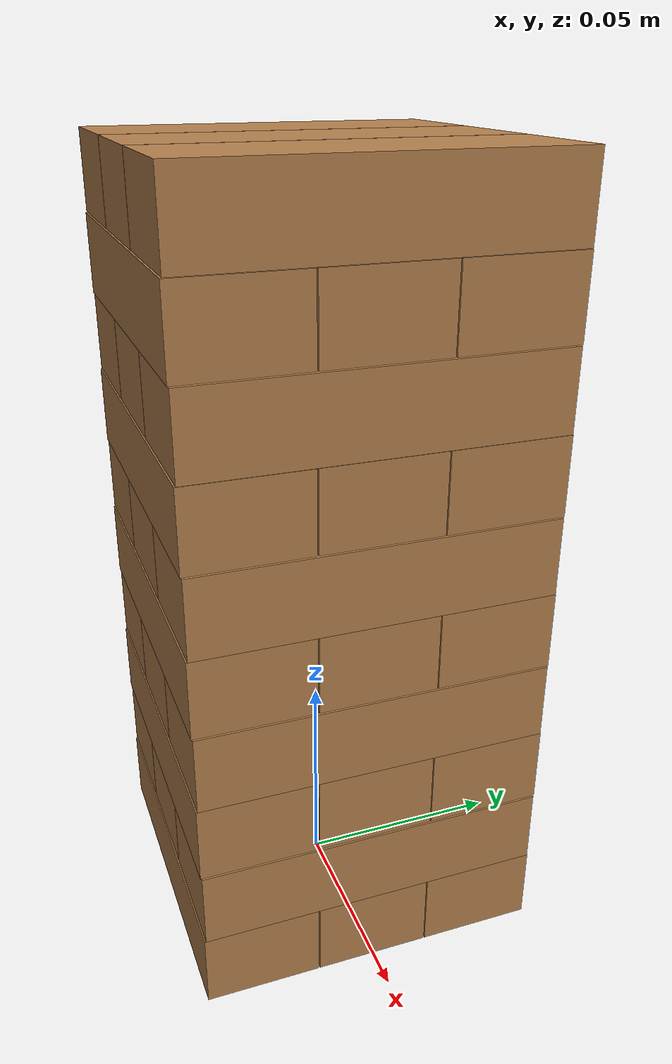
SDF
<?xml version="1.0" ?>
<sdf version="1.5">
  <model name="wood_block_stack">
    <link name= "block_1">
      <pose>0 -0.02727 0.009  0 0 0</pose>
      <self_collide>1</self_collide>
      <inertial>
        <mass>0.019682999999999996</mass>
        <inertia>
          <ixx>1.7271832499999993e-06</ixx>
          <iyy>1.1293121249999997e-05</iyy>
          <izz>1.1957422499999997e-05</izz>
          <ixy>0</ixy>
          <ixz>0</ixz>
          <iyz>0</iyz>
        </inertia>
      </inertial>
      <collision name="collision">
        <max_contacts>3</max_contacts>
        <geometry>
          <box>
            <size>0.081 0.027 0.018</size>
          </box>
        </geometry>
        <surface>
          <contact>
            <ode>
              <max_vel>1.0</max_vel>
              <min_depth>0.001</min_depth>
            </ode>
          </contact>
          <friction>
            <ode>
              <mu>0.4</mu>
              <mu2>0.4</mu2>
            </ode>
          </friction>
        </surface>
      </collision>
      <visual name="visual">
        <geometry>
          <box>
            <size>0.081 0.027 0.018</size>
          </box>
        </geometry>
        <material>
          <script>
            <uri>file://media/materials/scripts/gazebo.material</uri>
            <name>Gazebo/Wood</name>
          </script>
        </material>
      </visual>
    </link>

    <link name= "block_2">
      <pose>0 0.0 0.009  0 0 0</pose>
      <self_collide>1</self_collide>
      <inertial>
        <mass>0.019682999999999996</mass>
        <inertia>
          <ixx>1.7271832499999993e-06</ixx>
          <iyy>1.1293121249999997e-05</iyy>
          <izz>1.1957422499999997e-05</izz>
          <ixy>0</ixy>
          <ixz>0</ixz>
          <iyz>0</iyz>
        </inertia>
      </inertial>
      <collision name="collision">
        <max_contacts>3</max_contacts>
        <geometry>
          <box>
            <size>0.081 0.027 0.018</size>
          </box>
        </geometry>
        <surface>
          <contact>
            <ode>
              <max_vel>1.0</max_vel>
              <min_depth>0.001</min_depth>
            </ode>
          </contact>
          <friction>
            <ode>
              <mu>0.4</mu>
              <mu2>0.4</mu2>
            </ode>
          </friction>
        </surface>
      </collision>
      <visual name="visual">
        <geometry>
          <box>
            <size>0.081 0.027 0.018</size>
          </box>
        </geometry>
        <material>
          <script>
            <uri>file://media/materials/scripts/gazebo.material</uri>
            <name>Gazebo/Wood</name>
          </script>
        </material>
      </visual>
    </link>

    <link name= "block_3">
      <pose>0 0.02727 0.009  0 0 0</pose>
      <self_collide>1</self_collide>
      <inertial>
        <mass>0.019682999999999996</mass>
        <inertia>
          <ixx>1.7271832499999993e-06</ixx>
          <iyy>1.1293121249999997e-05</iyy>
          <izz>1.1957422499999997e-05</izz>
          <ixy>0</ixy>
          <ixz>0</ixz>
          <iyz>0</iyz>
        </inertia>
      </inertial>
      <collision name="collision">
        <max_contacts>3</max_contacts>
        <geometry>
          <box>
            <size>0.081 0.027 0.018</size>
          </box>
        </geometry>
        <surface>
          <contact>
            <ode>
              <max_vel>1.0</max_vel>
              <min_depth>0.001</min_depth>
            </ode>
          </contact>
          <friction>
            <ode>
              <mu>0.4</mu>
              <mu2>0.4</mu2>
            </ode>
          </friction>
        </surface>
      </collision>
      <visual name="visual">
        <geometry>
          <box>
            <size>0.081 0.027 0.018</size>
          </box>
        </geometry>
        <material>
          <script>
            <uri>file://media/materials/scripts/gazebo.material</uri>
            <name>Gazebo/Wood</name>
          </script>
        </material>
      </visual>
    </link>

    <link name= "block_4">
      <pose>-0.02727 0 0.027179999999999996  0 0 1.5707963267948966</pose>
      <self_collide>1</self_collide>
      <inertial>
        <mass>0.019682999999999996</mass>
        <inertia>
          <ixx>1.7271832499999993e-06</ixx>
          <iyy>1.1293121249999997e-05</iyy>
          <izz>1.1957422499999997e-05</izz>
          <ixy>0</ixy>
          <ixz>0</ixz>
          <iyz>0</iyz>
        </inertia>
      </inertial>
      <collision name="collision">
        <max_contacts>3</max_contacts>
        <geometry>
          <box>
            <size>0.081 0.027 0.018</size>
          </box>
        </geometry>
        <surface>
          <contact>
            <ode>
              <max_vel>1.0</max_vel>
              <min_depth>0.001</min_depth>
            </ode>
          </contact>
          <friction>
            <ode>
              <mu>0.4</mu>
              <mu2>0.4</mu2>
            </ode>
          </friction>
        </surface>
      </collision>
      <visual name="visual">
        <geometry>
          <box>
            <size>0.081 0.027 0.018</size>
          </box>
        </geometry>
        <material>
          <script>
            <uri>file://media/materials/scripts/gazebo.material</uri>
            <name>Gazebo/Wood</name>
          </script>
        </material>
      </visual>
    </link>

    <link name= "block_5">
      <pose>0.0 0 0.027179999999999996  0 0 1.5707963267948966</pose>
      <self_collide>1</self_collide>
      <inertial>
        <mass>0.019682999999999996</mass>
        <inertia>
          <ixx>1.7271832499999993e-06</ixx>
          <iyy>1.1293121249999997e-05</iyy>
          <izz>1.1957422499999997e-05</izz>
          <ixy>0</ixy>
          <ixz>0</ixz>
          <iyz>0</iyz>
        </inertia>
      </inertial>
      <collision name="collision">
        <max_contacts>3</max_contacts>
        <geometry>
          <box>
            <size>0.081 0.027 0.018</size>
          </box>
        </geometry>
        <surface>
          <contact>
            <ode>
              <max_vel>1.0</max_vel>
              <min_depth>0.001</min_depth>
            </ode>
          </contact>
          <friction>
            <ode>
              <mu>0.4</mu>
              <mu2>0.4</mu2>
            </ode>
          </friction>
        </surface>
      </collision>
      <visual name="visual">
        <geometry>
          <box>
            <size>0.081 0.027 0.018</size>
          </box>
        </geometry>
        <material>
          <script>
            <uri>file://media/materials/scripts/gazebo.material</uri>
            <name>Gazebo/Wood</name>
          </script>
        </material>
      </visual>
    </link>

    <link name= "block_6">
      <pose>0.02727 0 0.027179999999999996  0 0 1.5707963267948966</pose>
      <self_collide>1</self_collide>
      <inertial>
        <mass>0.019682999999999996</mass>
        <inertia>
          <ixx>1.7271832499999993e-06</ixx>
          <iyy>1.1293121249999997e-05</iyy>
          <izz>1.1957422499999997e-05</izz>
          <ixy>0</ixy>
          <ixz>0</ixz>
          <iyz>0</iyz>
        </inertia>
      </inertial>
      <collision name="collision">
        <max_contacts>3</max_contacts>
        <geometry>
          <box>
            <size>0.081 0.027 0.018</size>
          </box>
        </geometry>
        <surface>
          <contact>
            <ode>
              <max_vel>1.0</max_vel>
              <min_depth>0.001</min_depth>
            </ode>
          </contact>
          <friction>
            <ode>
              <mu>0.4</mu>
              <mu2>0.4</mu2>
            </ode>
          </friction>
        </surface>
      </collision>
      <visual name="visual">
        <geometry>
          <box>
            <size>0.081 0.027 0.018</size>
          </box>
        </geometry>
        <material>
          <script>
            <uri>file://media/materials/scripts/gazebo.material</uri>
            <name>Gazebo/Wood</name>
          </script>
        </material>
      </visual>
    </link>

    <link name= "block_7">
      <pose>0 -0.02727 0.04536  0 0 0</pose>
      <self_collide>1</self_collide>
      <inertial>
        <mass>0.019682999999999996</mass>
        <inertia>
          <ixx>1.7271832499999993e-06</ixx>
          <iyy>1.1293121249999997e-05</iyy>
          <izz>1.1957422499999997e-05</izz>
          <ixy>0</ixy>
          <ixz>0</ixz>
          <iyz>0</iyz>
        </inertia>
      </inertial>
      <collision name="collision">
        <max_contacts>3</max_contacts>
        <geometry>
          <box>
            <size>0.081 0.027 0.018</size>
          </box>
        </geometry>
        <surface>
          <contact>
            <ode>
              <max_vel>1.0</max_vel>
              <min_depth>0.001</min_depth>
            </ode>
          </contact>
          <friction>
            <ode>
              <mu>0.4</mu>
              <mu2>0.4</mu2>
            </ode>
          </friction>
        </surface>
      </collision>
      <visual name="visual">
        <geometry>
          <box>
            <size>0.081 0.027 0.018</size>
          </box>
        </geometry>
        <material>
          <script>
            <uri>file://media/materials/scripts/gazebo.material</uri>
            <name>Gazebo/Wood</name>
          </script>
        </material>
      </visual>
    </link>

    <link name= "block_8">
      <pose>0 0.0 0.04536  0 0 0</pose>
      <self_collide>1</self_collide>
      <inertial>
        <mass>0.019682999999999996</mass>
        <inertia>
          <ixx>1.7271832499999993e-06</ixx>
          <iyy>1.1293121249999997e-05</iyy>
          <izz>1.1957422499999997e-05</izz>
          <ixy>0</ixy>
          <ixz>0</ixz>
          <iyz>0</iyz>
        </inertia>
      </inertial>
      <collision name="collision">
        <max_contacts>3</max_contacts>
        <geometry>
          <box>
            <size>0.081 0.027 0.018</size>
          </box>
        </geometry>
        <surface>
          <contact>
            <ode>
              <max_vel>1.0</max_vel>
              <min_depth>0.001</min_depth>
            </ode>
          </contact>
          <friction>
            <ode>
              <mu>0.4</mu>
              <mu2>0.4</mu2>
            </ode>
          </friction>
        </surface>
      </collision>
      <visual name="visual">
        <geometry>
          <box>
            <size>0.081 0.027 0.018</size>
          </box>
        </geometry>
        <material>
          <script>
            <uri>file://media/materials/scripts/gazebo.material</uri>
            <name>Gazebo/Wood</name>
          </script>
        </material>
      </visual>
    </link>

    <link name= "block_9">
      <pose>0 0.02727 0.04536  0 0 0</pose>
      <self_collide>1</self_collide>
      <inertial>
        <mass>0.019682999999999996</mass>
        <inertia>
          <ixx>1.7271832499999993e-06</ixx>
          <iyy>1.1293121249999997e-05</iyy>
          <izz>1.1957422499999997e-05</izz>
          <ixy>0</ixy>
          <ixz>0</ixz>
          <iyz>0</iyz>
        </inertia>
      </inertial>
      <collision name="collision">
        <max_contacts>3</max_contacts>
        <geometry>
          <box>
            <size>0.081 0.027 0.018</size>
          </box>
        </geometry>
        <surface>
          <contact>
            <ode>
              <max_vel>1.0</max_vel>
              <min_depth>0.001</min_depth>
            </ode>
          </contact>
          <friction>
            <ode>
              <mu>0.4</mu>
              <mu2>0.4</mu2>
            </ode>
          </friction>
        </surface>
      </collision>
      <visual name="visual">
        <geometry>
          <box>
            <size>0.081 0.027 0.018</size>
          </box>
        </geometry>
        <material>
          <script>
            <uri>file://media/materials/scripts/gazebo.material</uri>
            <name>Gazebo/Wood</name>
          </script>
        </material>
      </visual>
    </link>

    <link name= "block_10">
      <pose>-0.02727 0 0.06354  0 0 1.5707963267948966</pose>
      <self_collide>1</self_collide>
      <inertial>
        <mass>0.019682999999999996</mass>
        <inertia>
          <ixx>1.7271832499999993e-06</ixx>
          <iyy>1.1293121249999997e-05</iyy>
          <izz>1.1957422499999997e-05</izz>
          <ixy>0</ixy>
          <ixz>0</ixz>
          <iyz>0</iyz>
        </inertia>
      </inertial>
      <collision name="collision">
        <max_contacts>3</max_contacts>
        <geometry>
          <box>
            <size>0.081 0.027 0.018</size>
          </box>
        </geometry>
        <surface>
          <contact>
            <ode>
              <max_vel>1.0</max_vel>
              <min_depth>0.001</min_depth>
            </ode>
          </contact>
          <friction>
            <ode>
              <mu>0.4</mu>
              <mu2>0.4</mu2>
            </ode>
          </friction>
        </surface>
      </collision>
      <visual name="visual">
        <geometry>
          <box>
            <size>0.081 0.027 0.018</size>
          </box>
        </geometry>
        <material>
          <script>
            <uri>file://media/materials/scripts/gazebo.material</uri>
            <name>Gazebo/Wood</name>
          </script>
        </material>
      </visual>
    </link>

    <link name= "block_11">
      <pose>0.0 0 0.06354  0 0 1.5707963267948966</pose>
      <self_collide>1</self_collide>
      <inertial>
        <mass>0.019682999999999996</mass>
        <inertia>
          <ixx>1.7271832499999993e-06</ixx>
          <iyy>1.1293121249999997e-05</iyy>
          <izz>1.1957422499999997e-05</izz>
          <ixy>0</ixy>
          <ixz>0</ixz>
          <iyz>0</iyz>
        </inertia>
      </inertial>
      <collision name="collision">
        <max_contacts>3</max_contacts>
        <geometry>
          <box>
            <size>0.081 0.027 0.018</size>
          </box>
        </geometry>
        <surface>
          <contact>
            <ode>
              <max_vel>1.0</max_vel>
              <min_depth>0.001</min_depth>
            </ode>
          </contact>
          <friction>
            <ode>
              <mu>0.4</mu>
              <mu2>0.4</mu2>
            </ode>
          </friction>
        </surface>
      </collision>
      <visual name="visual">
        <geometry>
          <box>
            <size>0.081 0.027 0.018</size>
          </box>
        </geometry>
        <material>
          <script>
            <uri>file://media/materials/scripts/gazebo.material</uri>
            <name>Gazebo/Wood</name>
          </script>
        </material>
      </visual>
    </link>

    <link name= "block_12">
      <pose>0.02727 0 0.06354  0 0 1.5707963267948966</pose>
      <self_collide>1</self_collide>
      <inertial>
        <mass>0.019682999999999996</mass>
        <inertia>
          <ixx>1.7271832499999993e-06</ixx>
          <iyy>1.1293121249999997e-05</iyy>
          <izz>1.1957422499999997e-05</izz>
          <ixy>0</ixy>
          <ixz>0</ixz>
          <iyz>0</iyz>
        </inertia>
      </inertial>
      <collision name="collision">
        <max_contacts>3</max_contacts>
        <geometry>
          <box>
            <size>0.081 0.027 0.018</size>
          </box>
        </geometry>
        <surface>
          <contact>
            <ode>
              <max_vel>1.0</max_vel>
              <min_depth>0.001</min_depth>
            </ode>
          </contact>
          <friction>
            <ode>
              <mu>0.4</mu>
              <mu2>0.4</mu2>
            </ode>
          </friction>
        </surface>
      </collision>
      <visual name="visual">
        <geometry>
          <box>
            <size>0.081 0.027 0.018</size>
          </box>
        </geometry>
        <material>
          <script>
            <uri>file://media/materials/scripts/gazebo.material</uri>
            <name>Gazebo/Wood</name>
          </script>
        </material>
      </visual>
    </link>

    <link name= "block_13">
      <pose>0 -0.02727 0.08171999999999999  0 0 0</pose>
      <self_collide>1</self_collide>
      <inertial>
        <mass>0.019682999999999996</mass>
        <inertia>
          <ixx>1.7271832499999993e-06</ixx>
          <iyy>1.1293121249999997e-05</iyy>
          <izz>1.1957422499999997e-05</izz>
          <ixy>0</ixy>
          <ixz>0</ixz>
          <iyz>0</iyz>
        </inertia>
      </inertial>
      <collision name="collision">
        <max_contacts>3</max_contacts>
        <geometry>
          <box>
            <size>0.081 0.027 0.018</size>
          </box>
        </geometry>
        <surface>
          <contact>
            <ode>
              <max_vel>1.0</max_vel>
              <min_depth>0.001</min_depth>
            </ode>
          </contact>
          <friction>
            <ode>
              <mu>0.4</mu>
              <mu2>0.4</mu2>
            </ode>
          </friction>
        </surface>
      </collision>
      <visual name="visual">
        <geometry>
          <box>
            <size>0.081 0.027 0.018</size>
          </box>
        </geometry>
        <material>
          <script>
            <uri>file://media/materials/scripts/gazebo.material</uri>
            <name>Gazebo/Wood</name>
          </script>
        </material>
      </visual>
    </link>

    <link name= "block_14">
      <pose>0 0.0 0.08171999999999999  0 0 0</pose>
      <self_collide>1</self_collide>
      <inertial>
        <mass>0.019682999999999996</mass>
        <inertia>
          <ixx>1.7271832499999993e-06</ixx>
          <iyy>1.1293121249999997e-05</iyy>
          <izz>1.1957422499999997e-05</izz>
          <ixy>0</ixy>
          <ixz>0</ixz>
          <iyz>0</iyz>
        </inertia>
      </inertial>
      <collision name="collision">
        <max_contacts>3</max_contacts>
        <geometry>
          <box>
            <size>0.081 0.027 0.018</size>
          </box>
        </geometry>
        <surface>
          <contact>
            <ode>
              <max_vel>1.0</max_vel>
              <min_depth>0.001</min_depth>
            </ode>
          </contact>
          <friction>
            <ode>
              <mu>0.4</mu>
              <mu2>0.4</mu2>
            </ode>
          </friction>
        </surface>
      </collision>
      <visual name="visual">
        <geometry>
          <box>
            <size>0.081 0.027 0.018</size>
          </box>
        </geometry>
        <material>
          <script>
            <uri>file://media/materials/scripts/gazebo.material</uri>
            <name>Gazebo/Wood</name>
          </script>
        </material>
      </visual>
    </link>

    <link name= "block_15">
      <pose>0 0.02727 0.08171999999999999  0 0 0</pose>
      <self_collide>1</self_collide>
      <inertial>
        <mass>0.019682999999999996</mass>
        <inertia>
          <ixx>1.7271832499999993e-06</ixx>
          <iyy>1.1293121249999997e-05</iyy>
          <izz>1.1957422499999997e-05</izz>
          <ixy>0</ixy>
          <ixz>0</ixz>
          <iyz>0</iyz>
        </inertia>
      </inertial>
      <collision name="collision">
        <max_contacts>3</max_contacts>
        <geometry>
          <box>
            <size>0.081 0.027 0.018</size>
          </box>
        </geometry>
        <surface>
          <contact>
            <ode>
              <max_vel>1.0</max_vel>
              <min_depth>0.001</min_depth>
            </ode>
          </contact>
          <friction>
            <ode>
              <mu>0.4</mu>
              <mu2>0.4</mu2>
            </ode>
          </friction>
        </surface>
      </collision>
      <visual name="visual">
        <geometry>
          <box>
            <size>0.081 0.027 0.018</size>
          </box>
        </geometry>
        <material>
          <script>
            <uri>file://media/materials/scripts/gazebo.material</uri>
            <name>Gazebo/Wood</name>
          </script>
        </material>
      </visual>
    </link>

    <link name= "block_16">
      <pose>-0.02727 0 0.09989999999999999  0 0 1.5707963267948966</pose>
      <self_collide>1</self_collide>
      <inertial>
        <mass>0.019682999999999996</mass>
        <inertia>
          <ixx>1.7271832499999993e-06</ixx>
          <iyy>1.1293121249999997e-05</iyy>
          <izz>1.1957422499999997e-05</izz>
          <ixy>0</ixy>
          <ixz>0</ixz>
          <iyz>0</iyz>
        </inertia>
      </inertial>
      <collision name="collision">
        <max_contacts>3</max_contacts>
        <geometry>
          <box>
            <size>0.081 0.027 0.018</size>
          </box>
        </geometry>
        <surface>
          <contact>
            <ode>
              <max_vel>1.0</max_vel>
              <min_depth>0.001</min_depth>
            </ode>
          </contact>
          <friction>
            <ode>
              <mu>0.4</mu>
              <mu2>0.4</mu2>
            </ode>
          </friction>
        </surface>
      </collision>
      <visual name="visual">
        <geometry>
          <box>
            <size>0.081 0.027 0.018</size>
          </box>
        </geometry>
        <material>
          <script>
            <uri>file://media/materials/scripts/gazebo.material</uri>
            <name>Gazebo/Wood</name>
          </script>
        </material>
      </visual>
    </link>

    <link name= "block_17">
      <pose>0.0 0 0.09989999999999999  0 0 1.5707963267948966</pose>
      <self_collide>1</self_collide>
      <inertial>
        <mass>0.019682999999999996</mass>
        <inertia>
          <ixx>1.7271832499999993e-06</ixx>
          <iyy>1.1293121249999997e-05</iyy>
          <izz>1.1957422499999997e-05</izz>
          <ixy>0</ixy>
          <ixz>0</ixz>
          <iyz>0</iyz>
        </inertia>
      </inertial>
      <collision name="collision">
        <max_contacts>3</max_contacts>
        <geometry>
          <box>
            <size>0.081 0.027 0.018</size>
          </box>
        </geometry>
        <surface>
          <contact>
            <ode>
              <max_vel>1.0</max_vel>
              <min_depth>0.001</min_depth>
            </ode>
          </contact>
          <friction>
            <ode>
              <mu>0.4</mu>
              <mu2>0.4</mu2>
            </ode>
          </friction>
        </surface>
      </collision>
      <visual name="visual">
        <geometry>
          <box>
            <size>0.081 0.027 0.018</size>
          </box>
        </geometry>
        <material>
          <script>
            <uri>file://media/materials/scripts/gazebo.material</uri>
            <name>Gazebo/Wood</name>
          </script>
        </material>
      </visual>
    </link>

    <link name= "block_18">
      <pose>0.02727 0 0.09989999999999999  0 0 1.5707963267948966</pose>
      <self_collide>1</self_collide>
      <inertial>
        <mass>0.019682999999999996</mass>
        <inertia>
          <ixx>1.7271832499999993e-06</ixx>
          <iyy>1.1293121249999997e-05</iyy>
          <izz>1.1957422499999997e-05</izz>
          <ixy>0</ixy>
          <ixz>0</ixz>
          <iyz>0</iyz>
        </inertia>
      </inertial>
      <collision name="collision">
        <max_contacts>3</max_contacts>
        <geometry>
          <box>
            <size>0.081 0.027 0.018</size>
          </box>
        </geometry>
        <surface>
          <contact>
            <ode>
              <max_vel>1.0</max_vel>
              <min_depth>0.001</min_depth>
            </ode>
          </contact>
          <friction>
            <ode>
              <mu>0.4</mu>
              <mu2>0.4</mu2>
            </ode>
          </friction>
        </surface>
      </collision>
      <visual name="visual">
        <geometry>
          <box>
            <size>0.081 0.027 0.018</size>
          </box>
        </geometry>
        <material>
          <script>
            <uri>file://media/materials/scripts/gazebo.material</uri>
            <name>Gazebo/Wood</name>
          </script>
        </material>
      </visual>
    </link>

    <link name= "block_19">
      <pose>0 -0.02727 0.11807999999999999  0 0 0</pose>
      <self_collide>1</self_collide>
      <inertial>
        <mass>0.019682999999999996</mass>
        <inertia>
          <ixx>1.7271832499999993e-06</ixx>
          <iyy>1.1293121249999997e-05</iyy>
          <izz>1.1957422499999997e-05</izz>
          <ixy>0</ixy>
          <ixz>0</ixz>
          <iyz>0</iyz>
        </inertia>
      </inertial>
      <collision name="collision">
        <max_contacts>3</max_contacts>
        <geometry>
          <box>
            <size>0.081 0.027 0.018</size>
          </box>
        </geometry>
        <surface>
          <contact>
            <ode>
              <max_vel>1.0</max_vel>
              <min_depth>0.001</min_depth>
            </ode>
          </contact>
          <friction>
            <ode>
              <mu>0.4</mu>
              <mu2>0.4</mu2>
            </ode>
          </friction>
        </surface>
      </collision>
      <visual name="visual">
        <geometry>
          <box>
            <size>0.081 0.027 0.018</size>
          </box>
        </geometry>
        <material>
          <script>
            <uri>file://media/materials/scripts/gazebo.material</uri>
            <name>Gazebo/Wood</name>
          </script>
        </material>
      </visual>
    </link>

    <link name= "block_20">
      <pose>0 0.0 0.11807999999999999  0 0 0</pose>
      <self_collide>1</self_collide>
      <inertial>
        <mass>0.019682999999999996</mass>
        <inertia>
          <ixx>1.7271832499999993e-06</ixx>
          <iyy>1.1293121249999997e-05</iyy>
          <izz>1.1957422499999997e-05</izz>
          <ixy>0</ixy>
          <ixz>0</ixz>
          <iyz>0</iyz>
        </inertia>
      </inertial>
      <collision name="collision">
        <max_contacts>3</max_contacts>
        <geometry>
          <box>
            <size>0.081 0.027 0.018</size>
          </box>
        </geometry>
        <surface>
          <contact>
            <ode>
              <max_vel>1.0</max_vel>
              <min_depth>0.001</min_depth>
            </ode>
          </contact>
          <friction>
            <ode>
              <mu>0.4</mu>
              <mu2>0.4</mu2>
            </ode>
          </friction>
        </surface>
      </collision>
      <visual name="visual">
        <geometry>
          <box>
            <size>0.081 0.027 0.018</size>
          </box>
        </geometry>
        <material>
          <script>
            <uri>file://media/materials/scripts/gazebo.material</uri>
            <name>Gazebo/Wood</name>
          </script>
        </material>
      </visual>
    </link>

    <link name= "block_21">
      <pose>0 0.02727 0.11807999999999999  0 0 0</pose>
      <self_collide>1</self_collide>
      <inertial>
        <mass>0.019682999999999996</mass>
        <inertia>
          <ixx>1.7271832499999993e-06</ixx>
          <iyy>1.1293121249999997e-05</iyy>
          <izz>1.1957422499999997e-05</izz>
          <ixy>0</ixy>
          <ixz>0</ixz>
          <iyz>0</iyz>
        </inertia>
      </inertial>
      <collision name="collision">
        <max_contacts>3</max_contacts>
        <geometry>
          <box>
            <size>0.081 0.027 0.018</size>
          </box>
        </geometry>
        <surface>
          <contact>
            <ode>
              <max_vel>1.0</max_vel>
              <min_depth>0.001</min_depth>
            </ode>
          </contact>
          <friction>
            <ode>
              <mu>0.4</mu>
              <mu2>0.4</mu2>
            </ode>
          </friction>
        </surface>
      </collision>
      <visual name="visual">
        <geometry>
          <box>
            <size>0.081 0.027 0.018</size>
          </box>
        </geometry>
        <material>
          <script>
            <uri>file://media/materials/scripts/gazebo.material</uri>
            <name>Gazebo/Wood</name>
          </script>
        </material>
      </visual>
    </link>

    <link name= "block_22">
      <pose>-0.02727 0 0.13626  0 0 1.5707963267948966</pose>
      <self_collide>1</self_collide>
      <inertial>
        <mass>0.019682999999999996</mass>
        <inertia>
          <ixx>1.7271832499999993e-06</ixx>
          <iyy>1.1293121249999997e-05</iyy>
          <izz>1.1957422499999997e-05</izz>
          <ixy>0</ixy>
          <ixz>0</ixz>
          <iyz>0</iyz>
        </inertia>
      </inertial>
      <collision name="collision">
        <max_contacts>3</max_contacts>
        <geometry>
          <box>
            <size>0.081 0.027 0.018</size>
          </box>
        </geometry>
        <surface>
          <contact>
            <ode>
              <max_vel>1.0</max_vel>
              <min_depth>0.001</min_depth>
            </ode>
          </contact>
          <friction>
            <ode>
              <mu>0.4</mu>
              <mu2>0.4</mu2>
            </ode>
          </friction>
        </surface>
      </collision>
      <visual name="visual">
        <geometry>
          <box>
            <size>0.081 0.027 0.018</size>
          </box>
        </geometry>
        <material>
          <script>
            <uri>file://media/materials/scripts/gazebo.material</uri>
            <name>Gazebo/Wood</name>
          </script>
        </material>
      </visual>
    </link>

    <link name= "block_23">
      <pose>0.0 0 0.13626  0 0 1.5707963267948966</pose>
      <self_collide>1</self_collide>
      <inertial>
        <mass>0.019682999999999996</mass>
        <inertia>
          <ixx>1.7271832499999993e-06</ixx>
          <iyy>1.1293121249999997e-05</iyy>
          <izz>1.1957422499999997e-05</izz>
          <ixy>0</ixy>
          <ixz>0</ixz>
          <iyz>0</iyz>
        </inertia>
      </inertial>
      <collision name="collision">
        <max_contacts>3</max_contacts>
        <geometry>
          <box>
            <size>0.081 0.027 0.018</size>
          </box>
        </geometry>
        <surface>
          <contact>
            <ode>
              <max_vel>1.0</max_vel>
              <min_depth>0.001</min_depth>
            </ode>
          </contact>
          <friction>
            <ode>
              <mu>0.4</mu>
              <mu2>0.4</mu2>
            </ode>
          </friction>
        </surface>
      </collision>
      <visual name="visual">
        <geometry>
          <box>
            <size>0.081 0.027 0.018</size>
          </box>
        </geometry>
        <material>
          <script>
            <uri>file://media/materials/scripts/gazebo.material</uri>
            <name>Gazebo/Wood</name>
          </script>
        </material>
      </visual>
    </link>

    <link name= "block_24">
      <pose>0.02727 0 0.13626  0 0 1.5707963267948966</pose>
      <self_collide>1</self_collide>
      <inertial>
        <mass>0.019682999999999996</mass>
        <inertia>
          <ixx>1.7271832499999993e-06</ixx>
          <iyy>1.1293121249999997e-05</iyy>
          <izz>1.1957422499999997e-05</izz>
          <ixy>0</ixy>
          <ixz>0</ixz>
          <iyz>0</iyz>
        </inertia>
      </inertial>
      <collision name="collision">
        <max_contacts>3</max_contacts>
        <geometry>
          <box>
            <size>0.081 0.027 0.018</size>
          </box>
        </geometry>
        <surface>
          <contact>
            <ode>
              <max_vel>1.0</max_vel>
              <min_depth>0.001</min_depth>
            </ode>
          </contact>
          <friction>
            <ode>
              <mu>0.4</mu>
              <mu2>0.4</mu2>
            </ode>
          </friction>
        </surface>
      </collision>
      <visual name="visual">
        <geometry>
          <box>
            <size>0.081 0.027 0.018</size>
          </box>
        </geometry>
        <material>
          <script>
            <uri>file://media/materials/scripts/gazebo.material</uri>
            <name>Gazebo/Wood</name>
          </script>
        </material>
      </visual>
    </link>

    <link name= "block_25">
      <pose>0 -0.02727 0.15444  0 0 0</pose>
      <self_collide>1</self_collide>
      <inertial>
        <mass>0.019682999999999996</mass>
        <inertia>
          <ixx>1.7271832499999993e-06</ixx>
          <iyy>1.1293121249999997e-05</iyy>
          <izz>1.1957422499999997e-05</izz>
          <ixy>0</ixy>
          <ixz>0</ixz>
          <iyz>0</iyz>
        </inertia>
      </inertial>
      <collision name="collision">
        <max_contacts>3</max_contacts>
        <geometry>
          <box>
            <size>0.081 0.027 0.018</size>
          </box>
        </geometry>
        <surface>
          <contact>
            <ode>
              <max_vel>1.0</max_vel>
              <min_depth>0.001</min_depth>
            </ode>
          </contact>
          <friction>
            <ode>
              <mu>0.4</mu>
              <mu2>0.4</mu2>
            </ode>
          </friction>
        </surface>
      </collision>
      <visual name="visual">
        <geometry>
          <box>
            <size>0.081 0.027 0.018</size>
          </box>
        </geometry>
        <material>
          <script>
            <uri>file://media/materials/scripts/gazebo.material</uri>
            <name>Gazebo/Wood</name>
          </script>
        </material>
      </visual>
    </link>

    <link name= "block_26">
      <pose>0 0.0 0.15444  0 0 0</pose>
      <self_collide>1</self_collide>
      <inertial>
        <mass>0.019682999999999996</mass>
        <inertia>
          <ixx>1.7271832499999993e-06</ixx>
          <iyy>1.1293121249999997e-05</iyy>
          <izz>1.1957422499999997e-05</izz>
          <ixy>0</ixy>
          <ixz>0</ixz>
          <iyz>0</iyz>
        </inertia>
      </inertial>
      <collision name="collision">
        <max_contacts>3</max_contacts>
        <geometry>
          <box>
            <size>0.081 0.027 0.018</size>
          </box>
        </geometry>
        <surface>
          <contact>
            <ode>
              <max_vel>1.0</max_vel>
              <min_depth>0.001</min_depth>
            </ode>
          </contact>
          <friction>
            <ode>
              <mu>0.4</mu>
              <mu2>0.4</mu2>
            </ode>
          </friction>
        </surface>
      </collision>
      <visual name="visual">
        <geometry>
          <box>
            <size>0.081 0.027 0.018</size>
          </box>
        </geometry>
        <material>
          <script>
            <uri>file://media/materials/scripts/gazebo.material</uri>
            <name>Gazebo/Wood</name>
          </script>
        </material>
      </visual>
    </link>

    <link name= "block_27">
      <pose>0 0.02727 0.15444  0 0 0</pose>
      <self_collide>1</self_collide>
      <inertial>
        <mass>0.019682999999999996</mass>
        <inertia>
          <ixx>1.7271832499999993e-06</ixx>
          <iyy>1.1293121249999997e-05</iyy>
          <izz>1.1957422499999997e-05</izz>
          <ixy>0</ixy>
          <ixz>0</ixz>
          <iyz>0</iyz>
        </inertia>
      </inertial>
      <collision name="collision">
        <max_contacts>3</max_contacts>
        <geometry>
          <box>
            <size>0.081 0.027 0.018</size>
          </box>
        </geometry>
        <surface>
          <contact>
            <ode>
              <max_vel>1.0</max_vel>
              <min_depth>0.001</min_depth>
            </ode>
          </contact>
          <friction>
            <ode>
              <mu>0.4</mu>
              <mu2>0.4</mu2>
            </ode>
          </friction>
        </surface>
      </collision>
      <visual name="visual">
        <geometry>
          <box>
            <size>0.081 0.027 0.018</size>
          </box>
        </geometry>
        <material>
          <script>
            <uri>file://media/materials/scripts/gazebo.material</uri>
            <name>Gazebo/Wood</name>
          </script>
        </material>
      </visual>
    </link>

    <link name= "block_28">
      <pose>-0.02727 0 0.17262  0 0 1.5707963267948966</pose>
      <self_collide>1</self_collide>
      <inertial>
        <mass>0.019682999999999996</mass>
        <inertia>
          <ixx>1.7271832499999993e-06</ixx>
          <iyy>1.1293121249999997e-05</iyy>
          <izz>1.1957422499999997e-05</izz>
          <ixy>0</ixy>
          <ixz>0</ixz>
          <iyz>0</iyz>
        </inertia>
      </inertial>
      <collision name="collision">
        <max_contacts>3</max_contacts>
        <geometry>
          <box>
            <size>0.081 0.027 0.018</size>
          </box>
        </geometry>
        <surface>
          <contact>
            <ode>
              <max_vel>1.0</max_vel>
              <min_depth>0.001</min_depth>
            </ode>
          </contact>
          <friction>
            <ode>
              <mu>0.4</mu>
              <mu2>0.4</mu2>
            </ode>
          </friction>
        </surface>
      </collision>
      <visual name="visual">
        <geometry>
          <box>
            <size>0.081 0.027 0.018</size>
          </box>
        </geometry>
        <material>
          <script>
            <uri>file://media/materials/scripts/gazebo.material</uri>
            <name>Gazebo/Wood</name>
          </script>
        </material>
      </visual>
    </link>

    <link name= "block_29">
      <pose>0.0 0 0.17262  0 0 1.5707963267948966</pose>
      <self_collide>1</self_collide>
      <inertial>
        <mass>0.019682999999999996</mass>
        <inertia>
          <ixx>1.7271832499999993e-06</ixx>
          <iyy>1.1293121249999997e-05</iyy>
          <izz>1.1957422499999997e-05</izz>
          <ixy>0</ixy>
          <ixz>0</ixz>
          <iyz>0</iyz>
        </inertia>
      </inertial>
      <collision name="collision">
        <max_contacts>3</max_contacts>
        <geometry>
          <box>
            <size>0.081 0.027 0.018</size>
          </box>
        </geometry>
        <surface>
          <contact>
            <ode>
              <max_vel>1.0</max_vel>
              <min_depth>0.001</min_depth>
            </ode>
          </contact>
          <friction>
            <ode>
              <mu>0.4</mu>
              <mu2>0.4</mu2>
            </ode>
          </friction>
        </surface>
      </collision>
      <visual name="visual">
        <geometry>
          <box>
            <size>0.081 0.027 0.018</size>
          </box>
        </geometry>
        <material>
          <script>
            <uri>file://media/materials/scripts/gazebo.material</uri>
            <name>Gazebo/Wood</name>
          </script>
        </material>
      </visual>
    </link>

    <link name= "block_30">
      <pose>0.02727 0 0.17262  0 0 1.5707963267948966</pose>
      <self_collide>1</self_collide>
      <inertial>
        <mass>0.019682999999999996</mass>
        <inertia>
          <ixx>1.7271832499999993e-06</ixx>
          <iyy>1.1293121249999997e-05</iyy>
          <izz>1.1957422499999997e-05</izz>
          <ixy>0</ixy>
          <ixz>0</ixz>
          <iyz>0</iyz>
        </inertia>
      </inertial>
      <collision name="collision">
        <max_contacts>3</max_contacts>
        <geometry>
          <box>
            <size>0.081 0.027 0.018</size>
          </box>
        </geometry>
        <surface>
          <contact>
            <ode>
              <max_vel>1.0</max_vel>
              <min_depth>0.001</min_depth>
            </ode>
          </contact>
          <friction>
            <ode>
              <mu>0.4</mu>
              <mu2>0.4</mu2>
            </ode>
          </friction>
        </surface>
      </collision>
      <visual name="visual">
        <geometry>
          <box>
            <size>0.081 0.027 0.018</size>
          </box>
        </geometry>
        <material>
          <script>
            <uri>file://media/materials/scripts/gazebo.material</uri>
            <name>Gazebo/Wood</name>
          </script>
        </material>
      </visual>
    </link>

  </model>
</sdf>
